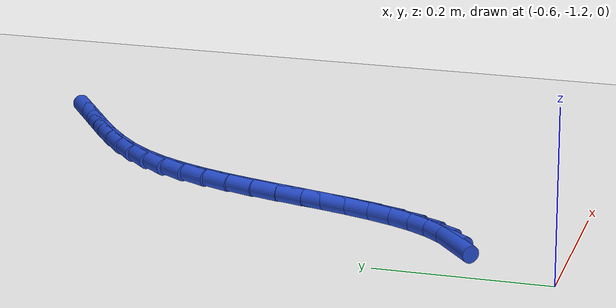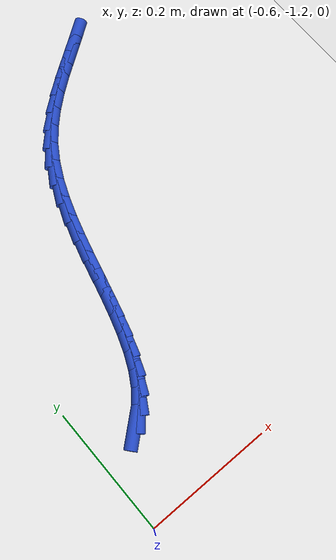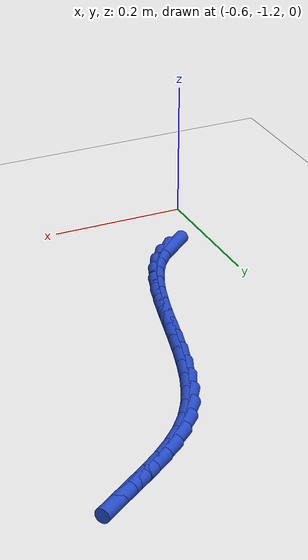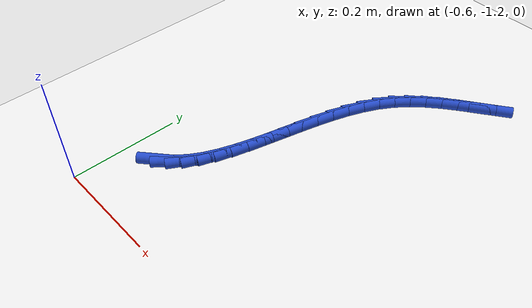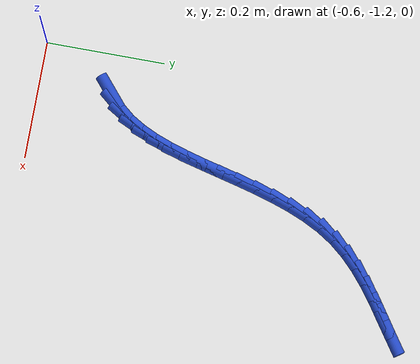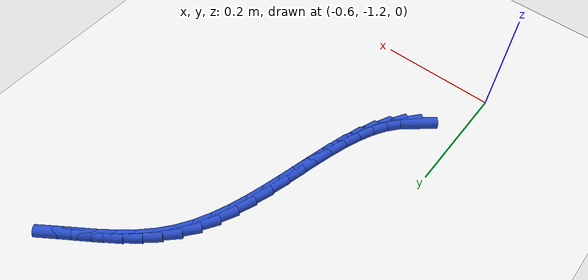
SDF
<sdf version="1.6">
 <world name="default">
  <model name="ground_plane">
   <static>1</static>
   <link name="link">
    <collision name="collision">
     <geometry><plane><normal>0 0 1</normal><size>100 100</size></plane></geometry>
     <surface><friction><ode><mu>100</mu><mu2>50</mu2></ode></friction></surface>
    </collision>
    <visual name="visual">
     <cast_shadows>0</cast_shadows>
     <geometry><plane><normal>0 0 1</normal><size>100 100</size></plane></geometry>
     <material>
      <script><uri>file://media/materials/scripts/gazebo.material</uri><name>Gazebo/WhiteGlow</name></script>
     </material>
    </visual>
   </link>
  </model>
  <model name="line">
   <link name="link_218">
    <pose>-0.5276927056831942 -1.0738781557014787 0.01 0 1.57 0.7025673705019235</pose>
    <collision name="collision">
     <geometry><cylinder><radius>0.01</radius><length>0.08</length></cylinder></geometry>
    </collision>
    <visual name="visual">
     <material>
      <script><name>Gazebo/Blue</name><uri>file://media/materials/scripts/gazebo.material</uri></script>
     </material>
     <geometry><cylinder><radius>0.01</radius><length>0.08</length></cylinder></geometry>
    </visual>
   </link>
   <link name="link_219">
    <pose>-0.5093020761850431 -1.0583070544460036 0.01 0 1.57 0.8827522065217667</pose>
    <collision name="collision">
     <geometry><cylinder><radius>0.01</radius><length>0.08</length></cylinder></geometry>
    </collision>
    <visual name="visual">
     <material>
      <script><name>Gazebo/Blue</name><uri>file://media/materials/scripts/gazebo.material</uri></script>
     </material>
     <geometry><cylinder><radius>0.01</radius><length>0.08</length></cylinder></geometry>
    </visual>
   </link>
   <link name="link_220">
    <pose>-0.4935836250246749 -1.039186088955202 0.01 0 1.57 1.0272442050781463</pose>
    <collision name="collision">
     <geometry><cylinder><radius>0.01</radius><length>0.08</length></cylinder></geometry>
    </collision>
    <visual name="visual">
     <material>
      <script><name>Gazebo/Blue</name><uri>file://media/materials/scripts/gazebo.material</uri></script>
     </material>
     <geometry><cylinder><radius>0.01</radius><length>0.08</length></cylinder></geometry>
    </visual>
   </link>
   <link name="link_221">
    <pose>-0.48014921454571063 -1.016953567054856 0.01 0 1.57 1.1369349140516423</pose>
    <collision name="collision">
     <geometry><cylinder><radius>0.01</radius><length>0.08</length></cylinder></geometry>
    </collision>
    <visual name="visual">
     <material>
      <script><name>Gazebo/Blue</name><uri>file://media/materials/scripts/gazebo.material</uri></script>
     </material>
     <geometry><cylinder><radius>0.01</radius><length>0.08</length></cylinder></geometry>
    </visual>
   </link>
   <link name="link_222">
    <pose>-0.46861046912164056 -0.9920481659223 0.01 0 1.57 1.2167469351530888</pose>
    <collision name="collision">
     <geometry><cylinder><radius>0.01</radius><length>0.08</length></cylinder></geometry>
    </collision>
    <visual name="visual">
     <material>
      <script><name>Gazebo/Blue</name><uri>file://media/materials/scripts/gazebo.material</uri></script>
     </material>
     <geometry><cylinder><radius>0.01</radius><length>0.08</length></cylinder></geometry>
    </visual>
   </link>
   <link name="link_223">
    <pose>-0.458579013125955 -0.9649085627348698 0.01 0 1.57 1.2719998376015091</pose>
    <collision name="collision">
     <geometry><cylinder><radius>0.01</radius><length>0.08</length></cylinder></geometry>
    </collision>
    <visual name="visual">
     <material>
      <script><name>Gazebo/Blue</name><uri>file://media/materials/scripts/gazebo.material</uri></script>
     </material>
     <geometry><cylinder><radius>0.01</radius><length>0.08</length></cylinder></geometry>
    </visual>
   </link>
   <link name="link_224">
    <pose>-0.4496664709321445 -0.9359734346699008 0.01 0 1.57 1.3069869399361047</pose>
    <collision name="collision">
     <geometry><cylinder><radius>0.01</radius><length>0.08</length></cylinder></geometry>
    </collision>
    <visual name="visual">
     <material>
      <script><name>Gazebo/Blue</name><uri>file://media/materials/scripts/gazebo.material</uri></script>
     </material>
     <geometry><cylinder><radius>0.01</radius><length>0.08</length></cylinder></geometry>
    </visual>
   </link>
   <link name="link_225">
    <pose>-0.4414844669136994 -0.9056814589047284 0.01 0 1.57 1.3246930100080911</pose>
    <collision name="collision">
     <geometry><cylinder><radius>0.01</radius><length>0.08</length></cylinder></geometry>
    </collision>
    <visual name="visual">
     <material>
      <script><name>Gazebo/Blue</name><uri>file://media/materials/scripts/gazebo.material</uri></script>
     </material>
     <geometry><cylinder><radius>0.01</radius><length>0.08</length></cylinder></geometry>
    </visual>
   </link>
   <link name="link_226">
    <pose>-0.43364462544411037 -0.8744713126166882 0.01 0 1.57 1.326897702332262</pose>
    <collision name="collision">
     <geometry><cylinder><radius>0.01</radius><length>0.08</length></cylinder></geometry>
    </collision>
    <visual name="visual">
     <material>
      <script><name>Gazebo/Blue</name><uri>file://media/materials/scripts/gazebo.material</uri></script>
     </material>
     <geometry><cylinder><radius>0.01</radius><length>0.08</length></cylinder></geometry>
    </visual>
   </link>
   <link name="link_227">
    <pose>-0.4257585708968678 -0.8427816729831158 0.01 0 1.57 1.3143416154553893</pose>
    <collision name="collision">
     <geometry><cylinder><radius>0.01</radius><length>0.08</length></cylinder></geometry>
    </collision>
    <visual name="visual">
     <material>
      <script><name>Gazebo/Blue</name><uri>file://media/materials/scripts/gazebo.material</uri></script>
     </material>
     <geometry><cylinder><radius>0.01</radius><length>0.08</length></cylinder></geometry>
    </visual>
   </link>
   <link name="link_228">
    <pose>-0.41743792764546206 -0.8110512171813464 0.01 0 1.57 1.286857094754961</pose>
    <collision name="collision">
     <geometry><cylinder><radius>0.01</radius><length>0.08</length></cylinder></geometry>
    </collision>
    <visual name="visual">
     <material>
      <script><name>Gazebo/Blue</name><uri>file://media/materials/scripts/gazebo.material</uri></script>
     </material>
     <geometry><cylinder><radius>0.01</radius><length>0.08</length></cylinder></geometry>
    </visual>
   </link>
   <link name="link_229">
    <pose>-0.40829432006338334 -0.7797186223887145 0.01 0 1.57 1.2434609070410865</pose>
    <collision name="collision">
     <geometry><cylinder><radius>0.01</radius><length>0.08</length></cylinder></geometry>
    </collision>
    <visual name="visual">
     <material>
      <script><name>Gazebo/Blue</name><uri>file://media/materials/scripts/gazebo.material</uri></script>
     </material>
     <geometry><cylinder><radius>0.01</radius><length>0.08</length></cylinder></geometry>
    </visual>
   </link>
   <link name="link_230">
    <pose>-0.3979393725241229 -0.749222565782558 0.01 0 1.57 1.182457597276828</pose>
    <collision name="collision">
     <geometry><cylinder><radius>0.01</radius><length>0.08</length></cylinder></geometry>
    </collision>
    <visual name="visual">
     <material>
      <script><name>Gazebo/Blue</name><uri>file://media/materials/scripts/gazebo.material</uri></script>
     </material>
     <geometry><cylinder><radius>0.01</radius><length>0.08</length></cylinder></geometry>
    </visual>
   </link>
   <link name="link_231">
    <pose>-0.3859847094011705 -0.7200017245402103 0.01 0 1.57 1.1016589477340712</pose>
    <collision name="collision">
     <geometry><cylinder><radius>0.01</radius><length>0.08</length></cylinder></geometry>
    </collision>
    <visual name="visual">
     <material>
      <script><name>Gazebo/Blue</name><uri>file://media/materials/scripts/gazebo.material</uri></script>
     </material>
     <geometry><cylinder><radius>0.01</radius><length>0.08</length></cylinder></geometry>
    </visual>
   </link>
   <link name="link_232">
    <pose>-0.3720419550680171 -0.692494775839008 0.01 0 1.57 0.9989042163056215</pose>
    <collision name="collision">
     <geometry><cylinder><radius>0.01</radius><length>0.08</length></cylinder></geometry>
    </collision>
    <visual name="visual">
     <material>
      <script><name>Gazebo/Blue</name><uri>file://media/materials/scripts/gazebo.material</uri></script>
     </material>
     <geometry><cylinder><radius>0.01</radius><length>0.08</length></cylinder></geometry>
    </visual>
   </link>
   <link name="link_233">
    <pose>-0.35572279291197834 -0.6671403383599424 0.01 0 1.57 0.8817055527014989</pose>
    <collision name="collision">
     <geometry><cylinder><radius>0.01</radius><length>0.08</length></cylinder></geometry>
    </collision>
    <visual name="visual">
     <material>
      <script><name>Gazebo/Blue</name><uri>file://media/materials/scripts/gazebo.material</uri></script>
     </material>
     <geometry><cylinder><radius>0.01</radius><length>0.08</length></cylinder></geometry>
    </visual>
   </link>
   <link name="link_234">
    <pose>-0.33682126843212706 -0.6441962677725804 0.01 0 1.57 0.7794837725064243</pose>
    <collision name="collision">
     <geometry><cylinder><radius>0.01</radius><length>0.08</length></cylinder></geometry>
    </collision>
    <visual name="visual">
     <material>
      <script><name>Gazebo/Blue</name><uri>file://media/materials/scripts/gazebo.material</uri></script>
     </material>
     <geometry><cylinder><radius>0.01</radius><length>0.08</length></cylinder></geometry>
    </visual>
   </link>
   <link name="link_235">
    <pose>-0.31571690372576044 -0.6233400770865265 0.01 0 1.57 0.6998480397917138</pose>
    <collision name="collision">
     <geometry><cylinder><radius>0.01</radius><length>0.08</length></cylinder></geometry>
    </collision>
    <visual name="visual">
     <material>
      <script><name>Gazebo/Blue</name><uri>file://media/materials/scripts/gazebo.material</uri></script>
     </material>
     <geometry><cylinder><radius>0.01</radius><length>0.08</length></cylinder></geometry>
    </visual>
   </link>
   <link name="link_236">
    <pose>-0.2929064808340699 -0.6041330475987008 0.01 0 1.57 0.6430163361502884</pose>
    <collision name="collision">
     <geometry><cylinder><radius>0.01</radius><length>0.08</length></cylinder></geometry>
    </collision>
    <visual name="visual">
     <material>
      <script><name>Gazebo/Blue</name><uri>file://media/materials/scripts/gazebo.material</uri></script>
     </material>
     <geometry><cylinder><radius>0.01</radius><length>0.08</length></cylinder></geometry>
    </visual>
   </link>
   <link name="link_237">
    <pose>-0.26888678179824904 -0.5861364606060264 0.01 0 1.57 0.6083429040457226</pose>
    <collision name="collision">
     <geometry><cylinder><radius>0.01</radius><length>0.08</length></cylinder></geometry>
    </collision>
    <visual name="visual">
     <material>
      <script><name>Gazebo/Blue</name><uri>file://media/materials/scripts/gazebo.material</uri></script>
     </material>
     <geometry><cylinder><radius>0.01</radius><length>0.08</length></cylinder></geometry>
    </visual>
   </link>
   <link name="link_238">
    <pose>-0.2441545886594894 -0.5689115974054243 0.01 0 1.57 0.5951808137637401</pose>
    <collision name="collision">
     <geometry><cylinder><radius>0.01</radius><length>0.08</length></cylinder></geometry>
    </collision>
    <visual name="visual">
     <material>
      <script><name>Gazebo/Blue</name><uri>file://media/materials/scripts/gazebo.material</uri></script>
     </material>
     <geometry><cylinder><radius>0.01</radius><length>0.08</length></cylinder></geometry>
    </visual>
   </link>
   <link name="link_239">
    <pose>-0.2192066834589832 -0.5520197392938152 0.01 0 1.57 0.6033635394558429</pose>
    <collision name="collision">
     <geometry><cylinder><radius>0.01</radius><length>0.08</length></cylinder></geometry>
    </collision>
    <visual name="visual">
     <material>
      <script><name>Gazebo/Blue</name><uri>file://media/materials/scripts/gazebo.material</uri></script>
     </material>
     <geometry><cylinder><radius>0.01</radius><length>0.08</length></cylinder></geometry>
    </visual>
   </link>
  </model>
 </world>
</sdf>
